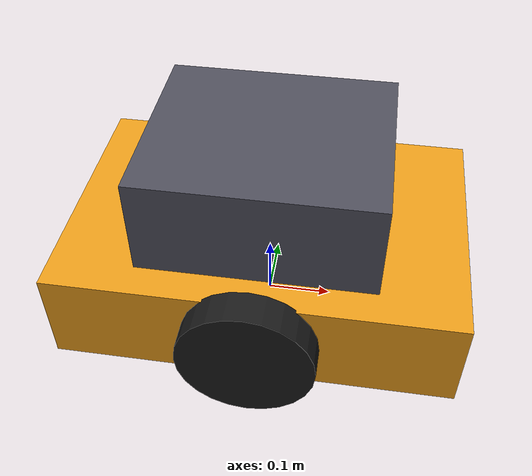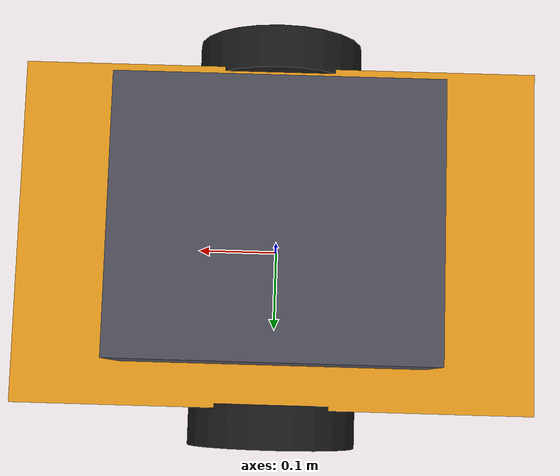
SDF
<?xml version="1.0"?>
<sdf version="1.9">
  <model name="signal_robot">
    <pose>0 0 0.1 0 0 0</pose>

    <link name="base_link">
      <inertial>
        <mass>10.0</mass>
        <inertia>
          <ixx>0.1521</ixx>
          <iyy>0.3188</iyy>
          <izz>0.4333</izz>
          <ixy>0</ixy>
          <ixz>0</ixz>
          <iyz>0</iyz>
        </inertia>
      </inertial>

      <collision name="base_collision">
        <geometry>
          <box><size>0.6 0.4 0.15</size></box>
        </geometry>
      </collision>

      <visual name="base_visual">
        <geometry>
          <box><size>0.6 0.4 0.15</size></box>
        </geometry>
        <material>
          <ambient>0.9 0.6 0.1 1</ambient>
          <diffuse>0.9 0.6 0.1 1</diffuse>
        </material>
      </visual>

      <!-- A block standing in for the cargo, so the robot's heading is obvious
           at a glance when it turns. -->
      <visual name="cargo_visual">
        <pose>0 0 0.15 0 0 0</pose>
        <geometry>
          <box><size>0.35 0.3 0.15</size></box>
        </geometry>
        <material>
          <ambient>0.3 0.3 0.35 1</ambient>
          <diffuse>0.3 0.3 0.35 1</diffuse>
        </material>
      </visual>
    </link>

    <!-- Wheels: radius 0.1, separation 0.44. These two numbers must match the
         DiffDrive plugin below, or commanded and actual velocity will differ. -->
    <link name="left_wheel">
      <pose>0 0.22 0 -1.5707 0 0</pose>
      <inertial>
        <mass>1.0</mass>
        <inertia>
          <ixx>0.0035</ixx>
          <iyy>0.0035</iyy>
          <izz>0.005</izz>
          <ixy>0</ixy>
          <ixz>0</ixz>
          <iyz>0</iyz>
        </inertia>
      </inertial>
      <collision name="left_wheel_collision">
        <geometry>
          <cylinder><radius>0.1</radius><length>0.05</length></cylinder>
        </geometry>
        <surface>
          <friction>
            <ode><mu>1.0</mu><mu2>1.0</mu2></ode>
          </friction>
        </surface>
      </collision>
      <visual name="left_wheel_visual">
        <geometry>
          <cylinder><radius>0.1</radius><length>0.05</length></cylinder>
        </geometry>
        <material>
          <ambient>0.1 0.1 0.1 1</ambient>
          <diffuse>0.1 0.1 0.1 1</diffuse>
        </material>
      </visual>
    </link>

    <link name="right_wheel">
      <pose>0 -0.22 0 -1.5707 0 0</pose>
      <inertial>
        <mass>1.0</mass>
        <inertia>
          <ixx>0.0035</ixx>
          <iyy>0.0035</iyy>
          <izz>0.005</izz>
          <ixy>0</ixy>
          <ixz>0</ixz>
          <iyz>0</iyz>
        </inertia>
      </inertial>
      <collision name="right_wheel_collision">
        <geometry>
          <cylinder><radius>0.1</radius><length>0.05</length></cylinder>
        </geometry>
        <surface>
          <friction>
            <ode><mu>1.0</mu><mu2>1.0</mu2></ode>
          </friction>
        </surface>
      </collision>
      <visual name="right_wheel_visual">
        <geometry>
          <cylinder><radius>0.1</radius><length>0.05</length></cylinder>
        </geometry>
        <material>
          <ambient>0.1 0.1 0.1 1</ambient>
          <diffuse>0.1 0.1 0.1 1</diffuse>
        </material>
      </visual>
    </link>

    <link name="front_caster">
      <pose>0.22 0 -0.05 0 0 0</pose>
      <inertial>
        <mass>0.1</mass>
        <inertia>
          <ixx>0.0001</ixx><iyy>0.0001</iyy><izz>0.0001</izz>
          <ixy>0</ixy><ixz>0</ixz><iyz>0</iyz>
        </inertia>
      </inertial>
      <collision name="front_caster_collision">
        <geometry><sphere><radius>0.05</radius></sphere></geometry>
        <surface>
          <friction>
            <ode><mu>0.0</mu><mu2>0.0</mu2></ode>
          </friction>
        </surface>
      </collision>
      <visual name="front_caster_visual">
        <geometry><sphere><radius>0.05</radius></sphere></geometry>
      </visual>
    </link>

    <link name="rear_caster">
      <pose>-0.22 0 -0.05 0 0 0</pose>
      <inertial>
        <mass>0.1</mass>
        <inertia>
          <ixx>0.0001</ixx><iyy>0.0001</iyy><izz>0.0001</izz>
          <ixy>0</ixy><ixz>0</ixz><iyz>0</iyz>
        </inertia>
      </inertial>
      <collision name="rear_caster_collision">
        <geometry><sphere><radius>0.05</radius></sphere></geometry>
        <surface>
          <friction>
            <ode><mu>0.0</mu><mu2>0.0</mu2></ode>
          </friction>
        </surface>
      </collision>
      <visual name="rear_caster_visual">
        <geometry><sphere><radius>0.05</radius></sphere></geometry>
      </visual>
    </link>

    <joint name="left_wheel_joint" type="revolute">
      <parent>base_link</parent>
      <child>left_wheel</child>
      <axis>
        <xyz expressed_in="__model__">0 1 0</xyz>
        <limit><lower>-1e16</lower><upper>1e16</upper></limit>
      </axis>
    </joint>

    <joint name="right_wheel_joint" type="revolute">
      <parent>base_link</parent>
      <child>right_wheel</child>
      <axis>
        <xyz expressed_in="__model__">0 1 0</xyz>
        <limit><lower>-1e16</lower><upper>1e16</upper></limit>
      </axis>
    </joint>

    <joint name="front_caster_joint" type="ball">
      <parent>base_link</parent>
      <child>front_caster</child>
    </joint>

    <joint name="rear_caster_joint" type="ball">
      <parent>base_link</parent>
      <child>rear_caster</child>
    </joint>

    <plugin filename="gz-sim-diff-drive-system" name="gz::sim::systems::DiffDrive">
      <left_joint>left_wheel_joint</left_joint>
      <right_joint>right_wheel_joint</right_joint>
      <wheel_separation>0.44</wheel_separation>
      <wheel_radius>0.1</wheel_radius>
      <topic>/model/signal_robot/cmd_vel</topic>
      <odom_topic>/model/signal_robot/odometry</odom_topic>
      <frame_id>odom</frame_id>
      <child_frame_id>base_link</child_frame_id>
      <odom_publish_frequency>30</odom_publish_frequency>
    </plugin>
  </model>
</sdf>
